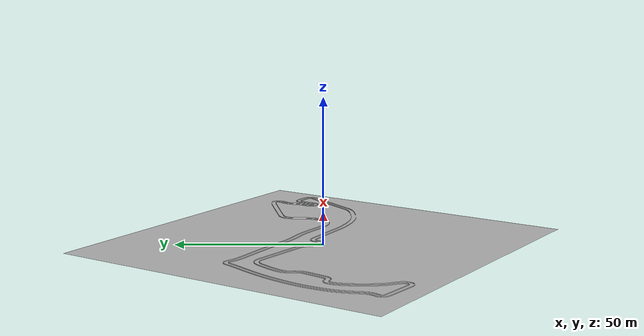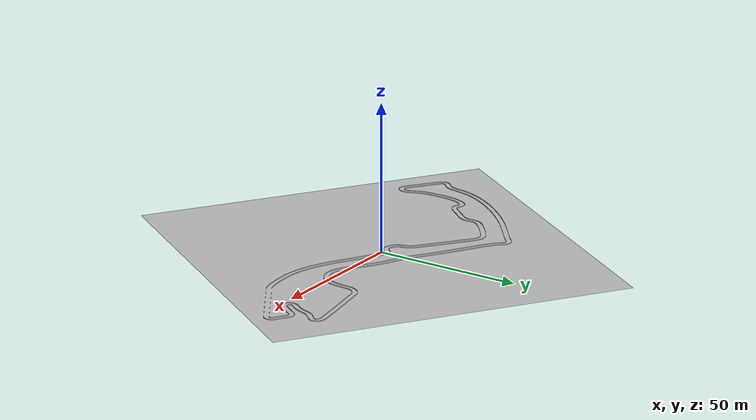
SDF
<?xml version='1.0'?>
<sdf version="1.4">
<model name="monaco">
  <pose>0 0 0 0 0 0</pose>
  <static>false</static>
    <link name="monaco">
    	<pose>0 0 0 0 0 0</pose>
        <collision name="collision">
            <geometry>
               <mesh>
                  <scale>15 15 15</scale>
                  <uri>model://monaco/meshes/CircuitoMonaco.dae</uri>
               </mesh>
            </geometry>
        </collision>
        <visual name="visual">
            <geometry>
               <mesh>
                  <scale>15 15 15</scale>
                  <uri>model://monaco/meshes/CircuitoMonaco.dae</uri>
               </mesh>
            </geometry>
        </visual>
     </link>
</model>
</sdf>
